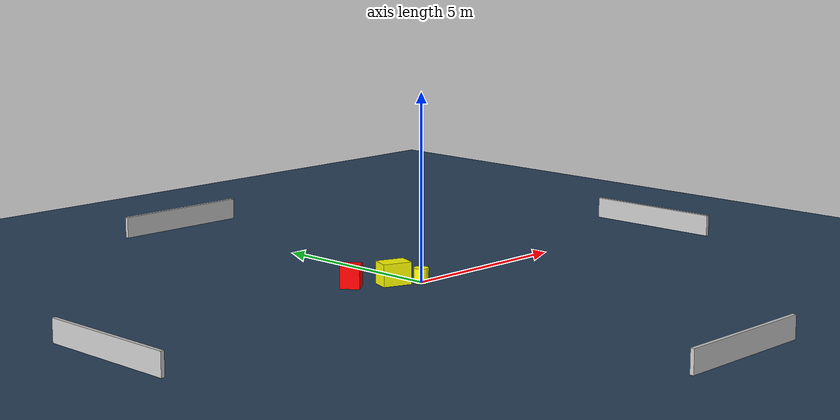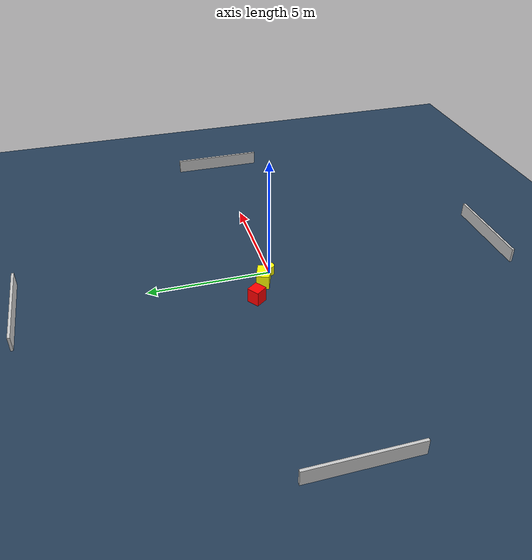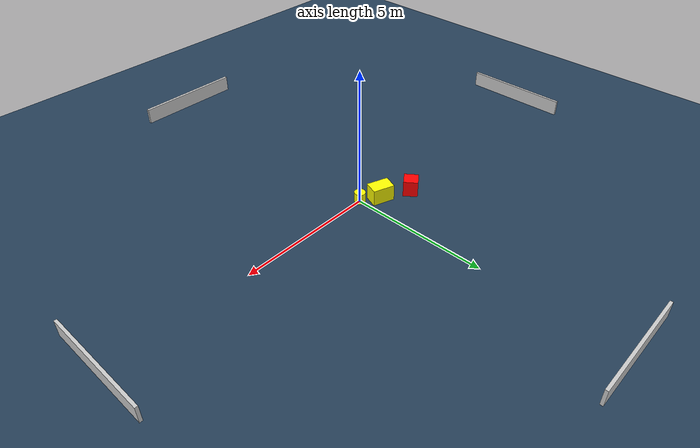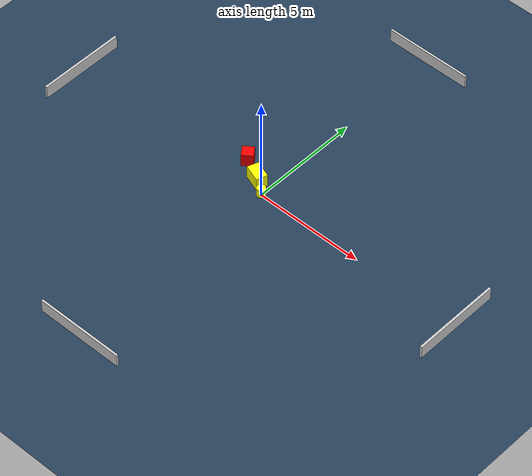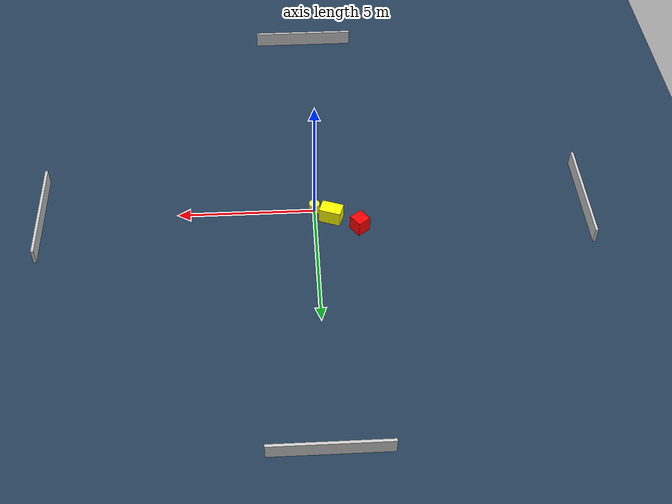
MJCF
<?xml version="1.0" ?>
<mujoco model="generated_environment">
  <option timestep="0.01" integrator="RK4" cone="elliptic"/>
  <default>
    <geom density="1"/>
  </default>
  <asset>
    <texture builtin="gradient" height="3072" name="skybox" rgb1="0.3 0.5 0.7" rgb2="0 0 0" type="skybox" width="512"/>
    <texture builtin="checker" height="300" name="groundplane" rgb1="0.2 0.3 0.4" rgb2="0.1 0.2 0.3" type="2d" width="300"/>
    <material name="groundplane" reflectance="0.2" texrepeat="5 5" texture="groundplane"/>
  </asset>
  <worldbody>
    <light dir="0 0 -1" directional="true" pos="0 0 1.5"/>
    <geom condim="3" friction="0.5 0.005 0.001" material="groundplane" name="floor" pos="0 0 0" size="0 0 0.05" type="plane"/>
    <body name="walls">
      <geom name="wall_1" condim="4" pos="-10.0 0.0 0.3" rgba="0.800000011920929 0.800000011920929 0.800000011920929 1.0" size="0.05 2.0 0.3" type="box"/>
      <geom name="wall_2" condim="4" pos="10.0 0.0 0.3" rgba="0.800000011920929 0.800000011920929 0.800000011920929 1.0" size="0.05 2.0 0.3" type="box"/>
      <geom name="wall_3" condim="4" pos="0.0 -10.0 0.3" rgba="0.800000011920929 0.800000011920929 0.800000011920929 1.0" size="2.0 0.05 0.3" type="box"/>
      <geom name="wall_4" condim="4" pos="0.0 10.0 0.3" rgba="0.800000011920929 0.800000011920929 0.800000011920929 1.0" size="2.0 0.05 0.3" type="box"/>
    </body>
    <body name="robot">
      <joint name="joint_x" type="slide" pos="0 0 0" axis="1 0 0"/>
      <joint name="joint_y" type="slide" pos="0 0 0" axis="0 1 0"/>
      <geom name="robot" type="cylinder" pos="0.0 0.0 0.2" size="0.2 0.2 0.0" mass="5.0" friction="1.0 0.005 0.0001" condim="4" rgba="1.0 1.0 0.0 1.0"/>
    </body>
    <body name="obstacle_1_movable">
      <geom name="obstacle_1_movable" condim="4" pos="-0.600723454223277 0.4195505204499195 0.3" euler="0 0 250.19916401732374" friction="0.0 0.005 0.001" rgba="1.0 1.0 0.0 1.0" size="0.2592862386404979 0.39770723364987404 0.3" type="box" mass="0.1"/>
      <joint type="free"/>
    </body>
    <body name="obstacle_2_static">
      <geom name="obstacle_2_static" condim="4" pos="-1.6097756281218236 0.9593310423852098 0.3" euler="0 0 216.3882035949933" friction="0.0 0.005 0.001" rgba="1.0 0.0 0.0 1.0" size="0.25592875936480686 0.25936731660062706 0.3" type="box"/>
    </body>
  </worldbody>
  <actuator>
    <motor name="actuator_x" joint="joint_x" gear="1" ctrlrange="-1 1"/>
    <motor name="actuator_y" joint="joint_y" gear="1" ctrlrange="-1 1"/>
  </actuator>
</mujoco>
